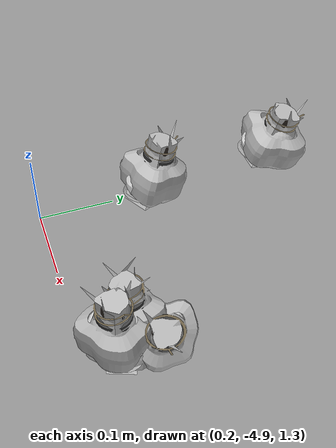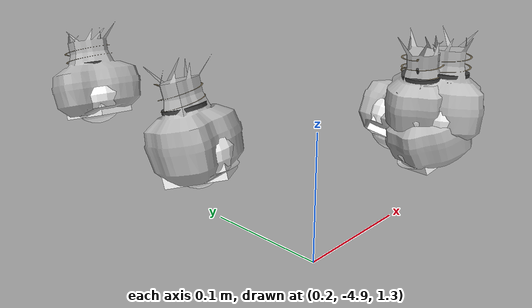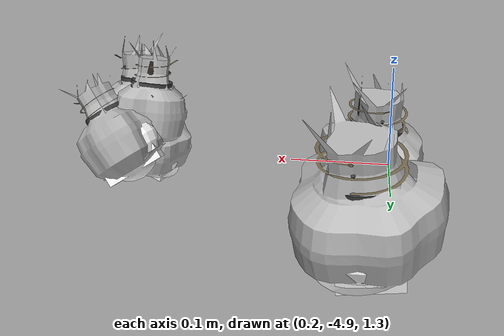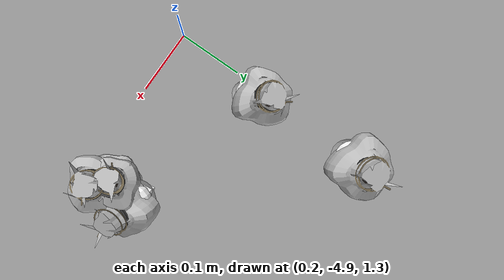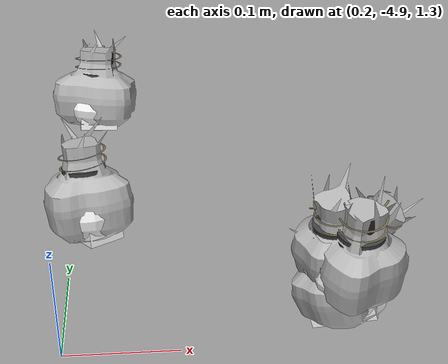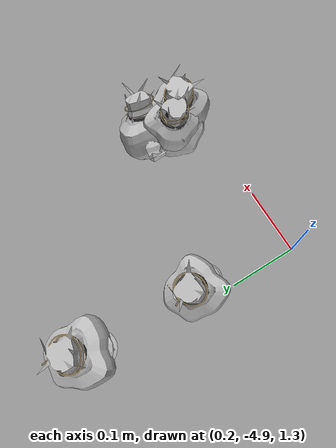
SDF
<sdf version="1.11">
 <world name="peach_orchard">
  <model name="ground">
   <static>true</static>
   <link name="link">
    <visual name="soil">
     <geometry><plane><normal>0 0 1</normal><size>32 22</size></plane></geometry>
     <material>
      <ambient>1 1 1 1</ambient>
      <diffuse>1 1 1 1</diffuse>
      <specular>0.1 0.1 0.1 1</specular>
      <pbr>
       <metal>
        <albedo_map>textures/soil_albedo.png</albedo_map>
        <normal_map type="tangent">textures/soil_normal.png</normal_map>
        <roughness>0.95</roughness>
        <metalness>0</metalness>
       </metal>
      </pbr>
     </material>
    </visual>
    <collision name="c_soil">
     <geometry><plane><normal>0 0 1</normal><size>32 22</size></plane></geometry>
    </collision>
   </link>
  </model>
  <model name="peach_tree_r2_t1_04">
   <pose>0.436662 -4.80912 1.30517 0 0.587862 -0.159604</pose>
   <static>true</static>
   <link name="bag">
    <visual name="bag_mesh">
     <pose>0 0 0.0455495 0 0 -0</pose>
     <geometry>
      <mesh><uri>model://peach_sim/meshes/bagged_peach.glb</uri><scale>0.971305 1.16217 1.03522</scale></mesh>
     </geometry>
    </visual>
    <visual name="body">
     <pose>0 0 0.0275495 0 0 0</pose>
     <geometry><ellipsoid><radii>0.0364239 0.0302163 0.0297535</radii></ellipsoid></geometry>
     <material>
      <ambient>1 1 1 1</ambient>
      <diffuse>1 1 1 1</diffuse>
      <specular>0.1 0.1 0.1 1</specular>
      <pbr>
       <metal>
        <albedo_map>textures/paper_bag_albedo.png</albedo_map>
        <normal_map type="tangent">textures/paper_bag_normal.png</normal_map>
        <roughness>0.72</roughness>
        <metalness>0</metalness>
       </metal>
      </pbr>
     </material>
    </visual>
    <visual name="bottom_fold">
     <pose>0 0 0.012 0 0 0.35</pose>
     <geometry><box><size>0.0564571 0.0347487 0.022</size></box></geometry>
     <material>
      <ambient>1 1 1 1</ambient>
      <diffuse>1 1 1 1</diffuse>
      <specular>0.1 0.1 0.1 1</specular>
      <pbr>
       <metal>
        <albedo_map>textures/paper_bag_albedo.png</albedo_map>
        <normal_map type="tangent">textures/paper_bag_normal.png</normal_map>
        <roughness>0.8</roughness>
        <metalness>0</metalness>
       </metal>
      </pbr>
     </material>
    </visual>
    <visual name="fruit">
     <pose>0 0 0.0204963 0 0 0</pose>
     <geometry><sphere><radius>0.0275561</radius></sphere></geometry>
     <material>
      <ambient>1 1 1 1</ambient>
      <diffuse>1 1 1 1</diffuse>
      <specular>0.1 0.1 0.1 1</specular>
      <pbr>
       <metal>
        <albedo_map>textures/fruit_skin_albedo.png</albedo_map>
        <normal_map type="tangent">textures/fruit_skin_normal.png</normal_map>
        <roughness>0.55</roughness>
        <metalness>0</metalness>
       </metal>
      </pbr>
     </material>
    </visual>
    <visual name="neck">
     <pose>0 0 0.064099 0 0 0</pose>
     <geometry><cylinder><radius>0.013</radius><length>0.018</length></cylinder></geometry>
     <material>
      <ambient>1 1 1 1</ambient>
      <diffuse>1 1 1 1</diffuse>
      <specular>0.1 0.1 0.1 1</specular>
      <pbr>
       <metal>
        <albedo_map>textures/paper_bag_albedo.png</albedo_map>
        <normal_map type="tangent">textures/paper_bag_normal.png</normal_map>
        <roughness>0.75</roughness>
        <metalness>0</metalness>
       </metal>
      </pbr>
     </material>
    </visual>
    <visual name="gather">
     <pose>0 0 0.045099 0 0 0</pose>
     <geometry><cylinder><radius>0.019</radius><length>0.02</length></cylinder></geometry>
     <material>
      <ambient>1 1 1 1</ambient>
      <diffuse>1 1 1 1</diffuse>
      <specular>0.1 0.1 0.1 1</specular>
      <pbr>
       <metal>
        <albedo_map>textures/paper_bag_albedo.png</albedo_map>
        <normal_map type="tangent">textures/paper_bag_normal.png</normal_map>
        <roughness>0.8</roughness>
        <metalness>0</metalness>
       </metal>
      </pbr>
     </material>
    </visual>
    <visual name="inner_paper">
     <pose>0 0 0.069099 0 0 0</pose>
     <geometry><cylinder><radius>0.01</radius><length>0.008</length></cylinder></geometry>
     <material>
      <ambient>0.180392 0.14902 0.133333 1</ambient>
      <diffuse>0.180392 0.14902 0.133333 1</diffuse>
      <specular>0.1 0.1 0.1 1</specular>
     </material>
    </visual>
    <visual name="wire_0">
     <pose>0 0 0.059099 0 0 0</pose>
     <geometry><cylinder><radius>0.0205</radius><length>0.0035</length></cylinder></geometry>
     <material>
      <ambient>0.25 0.25 0.25 1</ambient>
      <diffuse>0.25 0.25 0.25 1</diffuse>
      <specular>0.1 0.1 0.1 1</specular>
     </material>
    </visual>
    <visual name="wire_1">
     <pose>0 0 0.066099 0 0 0</pose>
     <geometry><cylinder><radius>0.0205</radius><length>0.0035</length></cylinder></geometry>
     <material>
      <ambient>0.25 0.25 0.25 1</ambient>
      <diffuse>0.25 0.25 0.25 1</diffuse>
      <specular>0.1 0.1 0.1 1</specular>
     </material>
    </visual>
    <visual name="wire_tail">
     <pose>0.01 0 0.067099 0 0.521618 0</pose>
     <geometry><cylinder><radius>0.0012</radius><length>0.026</length></cylinder></geometry>
     <material>
      <ambient>0.25 0.25 0.25 1</ambient>
      <diffuse>0.25 0.25 0.25 1</diffuse>
      <specular>0.1 0.1 0.1 1</specular>
     </material>
    </visual>
    <collision name="c_body">
     <pose>0 0 0.0275495 0 0 0</pose>
     <geometry><cylinder><radius>0.0364239</radius><length>0.055099</length></cylinder></geometry>
    </collision>
   </link>
  </model>
  <model name="peach_tree_r2_t1_05">
   <pose>0.441957 -4.84376 1.32323 0 0.123582 -2.92583</pose>
   <static>true</static>
   <link name="bag">
    <visual name="bag_mesh">
     <pose>0 0 0.044449 0 0 -0</pose>
     <geometry>
      <mesh><uri>model://peach_sim/meshes/bagged_peach.glb</uri><scale>0.914347 1.11201 1.0102</scale></mesh>
     </geometry>
    </visual>
    <visual name="body">
     <pose>0 0 0.026449 0 0 0</pose>
     <geometry><ellipsoid><radii>0.034288 0.0289122 0.0285649</radii></ellipsoid></geometry>
     <material>
      <ambient>1 1 1 1</ambient>
      <diffuse>1 1 1 1</diffuse>
      <specular>0.1 0.1 0.1 1</specular>
      <pbr>
       <metal>
        <albedo_map>textures/paper_bag_albedo.png</albedo_map>
        <normal_map type="tangent">textures/paper_bag_normal.png</normal_map>
        <roughness>0.72</roughness>
        <metalness>0</metalness>
       </metal>
      </pbr>
     </material>
    </visual>
    <visual name="bottom_fold">
     <pose>0 0 0.012 0 0 0.35</pose>
     <geometry><box><size>0.0531464 0.033249 0.022</size></box></geometry>
     <material>
      <ambient>1 1 1 1</ambient>
      <diffuse>1 1 1 1</diffuse>
      <specular>0.1 0.1 0.1 1</specular>
      <pbr>
       <metal>
        <albedo_map>textures/paper_bag_albedo.png</albedo_map>
        <normal_map type="tangent">textures/paper_bag_normal.png</normal_map>
        <roughness>0.8</roughness>
        <metalness>0</metalness>
       </metal>
      </pbr>
     </material>
    </visual>
    <visual name="fruit">
     <pose>0 0 0.0181017 0 0 0</pose>
     <geometry><sphere><radius>0.0250657</radius></sphere></geometry>
     <material>
      <ambient>1 1 1 1</ambient>
      <diffuse>1 1 1 1</diffuse>
      <specular>0.1 0.1 0.1 1</specular>
      <pbr>
       <metal>
        <albedo_map>textures/fruit_skin_albedo.png</albedo_map>
        <normal_map type="tangent">textures/fruit_skin_normal.png</normal_map>
        <roughness>0.55</roughness>
        <metalness>0</metalness>
       </metal>
      </pbr>
     </material>
    </visual>
    <visual name="neck">
     <pose>0 0 0.0618979 0 0 0</pose>
     <geometry><cylinder><radius>0.013</radius><length>0.018</length></cylinder></geometry>
     <material>
      <ambient>1 1 1 1</ambient>
      <diffuse>1 1 1 1</diffuse>
      <specular>0.1 0.1 0.1 1</specular>
      <pbr>
       <metal>
        <albedo_map>textures/paper_bag_albedo.png</albedo_map>
        <normal_map type="tangent">textures/paper_bag_normal.png</normal_map>
        <roughness>0.75</roughness>
        <metalness>0</metalness>
       </metal>
      </pbr>
     </material>
    </visual>
    <visual name="gather">
     <pose>0 0 0.0428979 0 0 0</pose>
     <geometry><cylinder><radius>0.019</radius><length>0.02</length></cylinder></geometry>
     <material>
      <ambient>1 1 1 1</ambient>
      <diffuse>1 1 1 1</diffuse>
      <specular>0.1 0.1 0.1 1</specular>
      <pbr>
       <metal>
        <albedo_map>textures/paper_bag_albedo.png</albedo_map>
        <normal_map type="tangent">textures/paper_bag_normal.png</normal_map>
        <roughness>0.8</roughness>
        <metalness>0</metalness>
       </metal>
      </pbr>
     </material>
    </visual>
    <visual name="inner_paper">
     <pose>0 0 0.0668979 0 0 0</pose>
     <geometry><cylinder><radius>0.01</radius><length>0.008</length></cylinder></geometry>
     <material>
      <ambient>0.180392 0.14902 0.133333 1</ambient>
      <diffuse>0.180392 0.14902 0.133333 1</diffuse>
      <specular>0.1 0.1 0.1 1</specular>
     </material>
    </visual>
    <visual name="wire_0">
     <pose>0 0 0.0568979 0 0 0</pose>
     <geometry><cylinder><radius>0.0205</radius><length>0.0035</length></cylinder></geometry>
     <material>
      <ambient>0.25 0.25 0.25 1</ambient>
      <diffuse>0.25 0.25 0.25 1</diffuse>
      <specular>0.1 0.1 0.1 1</specular>
     </material>
    </visual>
    <visual name="wire_1">
     <pose>0 0 0.0638979 0 0 0</pose>
     <geometry><cylinder><radius>0.0205</radius><length>0.0035</length></cylinder></geometry>
     <material>
      <ambient>0.25 0.25 0.25 1</ambient>
      <diffuse>0.25 0.25 0.25 1</diffuse>
      <specular>0.1 0.1 0.1 1</specular>
     </material>
    </visual>
    <visual name="wire_tail">
     <pose>0.01 0 0.0648979 0 0.521618 0</pose>
     <geometry><cylinder><radius>0.0012</radius><length>0.026</length></cylinder></geometry>
     <material>
      <ambient>0.25 0.25 0.25 1</ambient>
      <diffuse>0.25 0.25 0.25 1</diffuse>
      <specular>0.1 0.1 0.1 1</specular>
     </material>
    </visual>
    <collision name="c_body">
     <pose>0 0 0.026449 0 0 0</pose>
     <geometry><cylinder><radius>0.034288</radius><length>0.0528979</length></cylinder></geometry>
    </collision>
   </link>
  </model>
  <model name="peach_tree_r2_t1_06">
   <pose>0.447511 -4.86032 1.29674 0 0.347227 2.52687</pose>
   <static>true</static>
   <link name="bag">
    <visual name="bag_mesh">
     <pose>0 0 0.0392523 0 0 0</pose>
     <geometry>
      <mesh><uri>model://peach_sim/meshes/bagged_peach.glb</uri><scale>0.994447 1.1534 0.892099</scale></mesh>
     </geometry>
    </visual>
    <visual name="body">
     <pose>0 0 0.0212523 0 0 0</pose>
     <geometry><ellipsoid><radii>0.0372918 0.0299883 0.0229525</radii></ellipsoid></geometry>
     <material>
      <ambient>1 1 1 1</ambient>
      <diffuse>1 1 1 1</diffuse>
      <specular>0.1 0.1 0.1 1</specular>
      <pbr>
       <metal>
        <albedo_map>textures/paper_bag_albedo.png</albedo_map>
        <normal_map type="tangent">textures/paper_bag_normal.png</normal_map>
        <roughness>0.72</roughness>
        <metalness>0</metalness>
       </metal>
      </pbr>
     </material>
    </visual>
    <visual name="bottom_fold">
     <pose>0 0 0.012 0 0 0.35</pose>
     <geometry><box><size>0.0578022 0.0344866 0.022</size></box></geometry>
     <material>
      <ambient>1 1 1 1</ambient>
      <diffuse>1 1 1 1</diffuse>
      <specular>0.1 0.1 0.1 1</specular>
      <pbr>
       <metal>
        <albedo_map>textures/paper_bag_albedo.png</albedo_map>
        <normal_map type="tangent">textures/paper_bag_normal.png</normal_map>
        <roughness>0.8</roughness>
        <metalness>0</metalness>
       </metal>
      </pbr>
     </material>
    </visual>
    <visual name="fruit">
     <pose>0 0 0.020677 0 0 0</pose>
     <geometry><sphere><radius>0.0277441</radius></sphere></geometry>
     <material>
      <ambient>1 1 1 1</ambient>
      <diffuse>1 1 1 1</diffuse>
      <specular>0.1 0.1 0.1 1</specular>
      <pbr>
       <metal>
        <albedo_map>textures/fruit_skin_albedo.png</albedo_map>
        <normal_map type="tangent">textures/fruit_skin_normal.png</normal_map>
        <roughness>0.55</roughness>
        <metalness>0</metalness>
       </metal>
      </pbr>
     </material>
    </visual>
    <visual name="neck">
     <pose>0 0 0.0515047 0 0 0</pose>
     <geometry><cylinder><radius>0.013</radius><length>0.018</length></cylinder></geometry>
     <material>
      <ambient>1 1 1 1</ambient>
      <diffuse>1 1 1 1</diffuse>
      <specular>0.1 0.1 0.1 1</specular>
      <pbr>
       <metal>
        <albedo_map>textures/paper_bag_albedo.png</albedo_map>
        <normal_map type="tangent">textures/paper_bag_normal.png</normal_map>
        <roughness>0.75</roughness>
        <metalness>0</metalness>
       </metal>
      </pbr>
     </material>
    </visual>
    <visual name="gather">
     <pose>0 0 0.0325047 0 0 0</pose>
     <geometry><cylinder><radius>0.019</radius><length>0.02</length></cylinder></geometry>
     <material>
      <ambient>1 1 1 1</ambient>
      <diffuse>1 1 1 1</diffuse>
      <specular>0.1 0.1 0.1 1</specular>
      <pbr>
       <metal>
        <albedo_map>textures/paper_bag_albedo.png</albedo_map>
        <normal_map type="tangent">textures/paper_bag_normal.png</normal_map>
        <roughness>0.8</roughness>
        <metalness>0</metalness>
       </metal>
      </pbr>
     </material>
    </visual>
    <visual name="inner_paper">
     <pose>0 0 0.0565047 0 0 0</pose>
     <geometry><cylinder><radius>0.01</radius><length>0.008</length></cylinder></geometry>
     <material>
      <ambient>0.180392 0.14902 0.133333 1</ambient>
      <diffuse>0.180392 0.14902 0.133333 1</diffuse>
      <specular>0.1 0.1 0.1 1</specular>
     </material>
    </visual>
    <visual name="wire_0">
     <pose>0 0 0.0465047 0 0 0</pose>
     <geometry><cylinder><radius>0.0205</radius><length>0.0035</length></cylinder></geometry>
     <material>
      <ambient>0.25 0.25 0.25 1</ambient>
      <diffuse>0.25 0.25 0.25 1</diffuse>
      <specular>0.1 0.1 0.1 1</specular>
     </material>
    </visual>
    <visual name="wire_1">
     <pose>0 0 0.0535047 0 0 0</pose>
     <geometry><cylinder><radius>0.0205</radius><length>0.0035</length></cylinder></geometry>
     <material>
      <ambient>0.25 0.25 0.25 1</ambient>
      <diffuse>0.25 0.25 0.25 1</diffuse>
      <specular>0.1 0.1 0.1 1</specular>
     </material>
    </visual>
    <visual name="wire_tail">
     <pose>0.01 0 0.0545047 0 0.521618 0</pose>
     <geometry><cylinder><radius>0.0012</radius><length>0.026</length></cylinder></geometry>
     <material>
      <ambient>0.25 0.25 0.25 1</ambient>
      <diffuse>0.25 0.25 0.25 1</diffuse>
      <specular>0.1 0.1 0.1 1</specular>
     </material>
    </visual>
    <collision name="c_body">
     <pose>0 0 0.0212523 0 0 0</pose>
     <geometry><cylinder><radius>0.0372918</radius><length>0.0425047</length></cylinder></geometry>
    </collision>
   </link>
  </model>
  <model name="peach_tree_r2_t1_07">
   <pose>0.449602 -4.86527 1.3195 0 0.0382728 0.388634</pose>
   <static>true</static>
   <link name="bag">
    <visual name="bag_mesh">
     <pose>0 0 0.0470656 0 0 0</pose>
     <geometry>
      <mesh><uri>model://peach_sim/meshes/bagged_peach.glb</uri><scale>1.01619 1.12014 1.06967</scale></mesh>
     </geometry>
    </visual>
    <visual name="body">
     <pose>0 0 0.0290656 0 0 0</pose>
     <geometry><ellipsoid><radii>0.0381072 0.0291236 0.0313908</radii></ellipsoid></geometry>
     <material>
      <ambient>1 1 1 1</ambient>
      <diffuse>1 1 1 1</diffuse>
      <specular>0.1 0.1 0.1 1</specular>
      <pbr>
       <metal>
        <albedo_map>textures/paper_bag_albedo.png</albedo_map>
        <normal_map type="tangent">textures/paper_bag_normal.png</normal_map>
        <roughness>0.72</roughness>
        <metalness>0</metalness>
       </metal>
      </pbr>
     </material>
    </visual>
    <visual name="bottom_fold">
     <pose>0 0 0.012 0 0 0.35</pose>
     <geometry><box><size>0.0590661 0.0334922 0.022</size></box></geometry>
     <material>
      <ambient>1 1 1 1</ambient>
      <diffuse>1 1 1 1</diffuse>
      <specular>0.1 0.1 0.1 1</specular>
      <pbr>
       <metal>
        <albedo_map>textures/paper_bag_albedo.png</albedo_map>
        <normal_map type="tangent">textures/paper_bag_normal.png</normal_map>
        <roughness>0.8</roughness>
        <metalness>0</metalness>
       </metal>
      </pbr>
     </material>
    </visual>
    <visual name="fruit">
     <pose>0 0 0.0181959 0 0 0</pose>
     <geometry><sphere><radius>0.0251638</radius></sphere></geometry>
     <material>
      <ambient>1 1 1 1</ambient>
      <diffuse>1 1 1 1</diffuse>
      <specular>0.1 0.1 0.1 1</specular>
      <pbr>
       <metal>
        <albedo_map>textures/fruit_skin_albedo.png</albedo_map>
        <normal_map type="tangent">textures/fruit_skin_normal.png</normal_map>
        <roughness>0.55</roughness>
        <metalness>0</metalness>
       </metal>
      </pbr>
     </material>
    </visual>
    <visual name="neck">
     <pose>0 0 0.0671312 0 0 0</pose>
     <geometry><cylinder><radius>0.013</radius><length>0.018</length></cylinder></geometry>
     <material>
      <ambient>1 1 1 1</ambient>
      <diffuse>1 1 1 1</diffuse>
      <specular>0.1 0.1 0.1 1</specular>
      <pbr>
       <metal>
        <albedo_map>textures/paper_bag_albedo.png</albedo_map>
        <normal_map type="tangent">textures/paper_bag_normal.png</normal_map>
        <roughness>0.75</roughness>
        <metalness>0</metalness>
       </metal>
      </pbr>
     </material>
    </visual>
    <visual name="gather">
     <pose>0 0 0.0481312 0 0 0</pose>
     <geometry><cylinder><radius>0.019</radius><length>0.02</length></cylinder></geometry>
     <material>
      <ambient>1 1 1 1</ambient>
      <diffuse>1 1 1 1</diffuse>
      <specular>0.1 0.1 0.1 1</specular>
      <pbr>
       <metal>
        <albedo_map>textures/paper_bag_albedo.png</albedo_map>
        <normal_map type="tangent">textures/paper_bag_normal.png</normal_map>
        <roughness>0.8</roughness>
        <metalness>0</metalness>
       </metal>
      </pbr>
     </material>
    </visual>
    <visual name="inner_paper">
     <pose>0 0 0.0721312 0 0 0</pose>
     <geometry><cylinder><radius>0.01</radius><length>0.008</length></cylinder></geometry>
     <material>
      <ambient>0.180392 0.14902 0.133333 1</ambient>
      <diffuse>0.180392 0.14902 0.133333 1</diffuse>
      <specular>0.1 0.1 0.1 1</specular>
     </material>
    </visual>
    <visual name="wire_0">
     <pose>0 0 0.0621312 0 0 0</pose>
     <geometry><cylinder><radius>0.0205</radius><length>0.0035</length></cylinder></geometry>
     <material>
      <ambient>0.25 0.25 0.25 1</ambient>
      <diffuse>0.25 0.25 0.25 1</diffuse>
      <specular>0.1 0.1 0.1 1</specular>
     </material>
    </visual>
    <visual name="wire_1">
     <pose>0 0 0.0691312 0 0 0</pose>
     <geometry><cylinder><radius>0.0205</radius><length>0.0035</length></cylinder></geometry>
     <material>
      <ambient>0.25 0.25 0.25 1</ambient>
      <diffuse>0.25 0.25 0.25 1</diffuse>
      <specular>0.1 0.1 0.1 1</specular>
     </material>
    </visual>
    <visual name="wire_tail">
     <pose>0.01 0 0.0701312 0 0.521618 0</pose>
     <geometry><cylinder><radius>0.0012</radius><length>0.026</length></cylinder></geometry>
     <material>
      <ambient>0.25 0.25 0.25 1</ambient>
      <diffuse>0.25 0.25 0.25 1</diffuse>
      <specular>0.1 0.1 0.1 1</specular>
     </material>
    </visual>
    <collision name="c_body">
     <pose>0 0 0.0290656 0 0 0</pose>
     <geometry><cylinder><radius>0.0381072</radius><length>0.0581312</length></cylinder></geometry>
    </collision>
   </link>
  </model>
  <model name="peach_tree_r2_t1_10">
   <pose>0.22 -4.58666 1.33521 0 0.303935 1.32749</pose>
   <static>true</static>
   <link name="bag">
    <visual name="bag_mesh">
     <pose>0 0 0.0401872 0 0 0</pose>
     <geometry>
      <mesh><uri>model://peach_sim/meshes/bagged_peach.glb</uri><scale>1.07845 1.26526 0.913346</scale></mesh>
     </geometry>
    </visual>
    <visual name="body">
     <pose>0 0 0.0221872 0 0 0</pose>
     <geometry><ellipsoid><radii>0.0404418 0.0328967 0.0239622</radii></ellipsoid></geometry>
     <material>
      <ambient>1 1 1 1</ambient>
      <diffuse>1 1 1 1</diffuse>
      <specular>0.1 0.1 0.1 1</specular>
      <pbr>
       <metal>
        <albedo_map>textures/paper_bag_albedo.png</albedo_map>
        <normal_map type="tangent">textures/paper_bag_normal.png</normal_map>
        <roughness>0.72</roughness>
        <metalness>0</metalness>
       </metal>
      </pbr>
     </material>
    </visual>
    <visual name="bottom_fold">
     <pose>0 0 0.012 0 0 0.35</pose>
     <geometry><box><size>0.0626847 0.0378312 0.022</size></box></geometry>
     <material>
      <ambient>1 1 1 1</ambient>
      <diffuse>1 1 1 1</diffuse>
      <specular>0.1 0.1 0.1 1</specular>
      <pbr>
       <metal>
        <albedo_map>textures/paper_bag_albedo.png</albedo_map>
        <normal_map type="tangent">textures/paper_bag_normal.png</normal_map>
        <roughness>0.8</roughness>
        <metalness>0</metalness>
       </metal>
      </pbr>
     </material>
    </visual>
    <visual name="fruit">
     <pose>0 0 0.0200574 0 0 0</pose>
     <geometry><sphere><radius>0.0270997</radius></sphere></geometry>
     <material>
      <ambient>1 1 1 1</ambient>
      <diffuse>1 1 1 1</diffuse>
      <specular>0.1 0.1 0.1 1</specular>
      <pbr>
       <metal>
        <albedo_map>textures/fruit_skin_albedo.png</albedo_map>
        <normal_map type="tangent">textures/fruit_skin_normal.png</normal_map>
        <roughness>0.55</roughness>
        <metalness>0</metalness>
       </metal>
      </pbr>
     </material>
    </visual>
    <visual name="neck">
     <pose>0 0 0.0533744 0 0 0</pose>
     <geometry><cylinder><radius>0.013</radius><length>0.018</length></cylinder></geometry>
     <material>
      <ambient>1 1 1 1</ambient>
      <diffuse>1 1 1 1</diffuse>
      <specular>0.1 0.1 0.1 1</specular>
      <pbr>
       <metal>
        <albedo_map>textures/paper_bag_albedo.png</albedo_map>
        <normal_map type="tangent">textures/paper_bag_normal.png</normal_map>
        <roughness>0.75</roughness>
        <metalness>0</metalness>
       </metal>
      </pbr>
     </material>
    </visual>
    <visual name="gather">
     <pose>0 0 0.0343744 0 0 0</pose>
     <geometry><cylinder><radius>0.019</radius><length>0.02</length></cylinder></geometry>
     <material>
      <ambient>1 1 1 1</ambient>
      <diffuse>1 1 1 1</diffuse>
      <specular>0.1 0.1 0.1 1</specular>
      <pbr>
       <metal>
        <albedo_map>textures/paper_bag_albedo.png</albedo_map>
        <normal_map type="tangent">textures/paper_bag_normal.png</normal_map>
        <roughness>0.8</roughness>
        <metalness>0</metalness>
       </metal>
      </pbr>
     </material>
    </visual>
    <visual name="inner_paper">
     <pose>0 0 0.0583744 0 0 0</pose>
     <geometry><cylinder><radius>0.01</radius><length>0.008</length></cylinder></geometry>
     <material>
      <ambient>0.180392 0.14902 0.133333 1</ambient>
      <diffuse>0.180392 0.14902 0.133333 1</diffuse>
      <specular>0.1 0.1 0.1 1</specular>
     </material>
    </visual>
    <visual name="wire_0">
     <pose>0 0 0.0483744 0 0 0</pose>
     <geometry><cylinder><radius>0.0205</radius><length>0.0035</length></cylinder></geometry>
     <material>
      <ambient>0.25 0.25 0.25 1</ambient>
      <diffuse>0.25 0.25 0.25 1</diffuse>
      <specular>0.1 0.1 0.1 1</specular>
     </material>
    </visual>
    <visual name="wire_1">
     <pose>0 0 0.0553744 0 0 0</pose>
     <geometry><cylinder><radius>0.0205</radius><length>0.0035</length></cylinder></geometry>
     <material>
      <ambient>0.25 0.25 0.25 1</ambient>
      <diffuse>0.25 0.25 0.25 1</diffuse>
      <specular>0.1 0.1 0.1 1</specular>
     </material>
    </visual>
    <visual name="wire_tail">
     <pose>0.01 0 0.0563744 0 0.521618 0</pose>
     <geometry><cylinder><radius>0.0012</radius><length>0.026</length></cylinder></geometry>
     <material>
      <ambient>0.25 0.25 0.25 1</ambient>
      <diffuse>0.25 0.25 0.25 1</diffuse>
      <specular>0.1 0.1 0.1 1</specular>
     </material>
    </visual>
    <collision name="c_body">
     <pose>0 0 0.0221872 0 0 0</pose>
     <geometry><cylinder><radius>0.0404418</radius><length>0.0443744</length></cylinder></geometry>
    </collision>
   </link>
  </model>
  <model name="peach_tree_r2_t1_11">
   <pose>0.22 -4.75347 1.31327 0 0.254386 1.79919</pose>
   <static>true</static>
   <link name="bag">
    <visual name="bag_mesh">
     <pose>0 0 0.0462374 0 0 0</pose>
     <geometry>
      <mesh><uri>model://peach_sim/meshes/bagged_peach.glb</uri><scale>1.02661 1.16115 1.05085</scale></mesh>
     </geometry>
    </visual>
    <visual name="body">
     <pose>0 0 0.0282374 0 0 0</pose>
     <geometry><ellipsoid><radii>0.0384979 0.0301898 0.0304964</radii></ellipsoid></geometry>
     <material>
      <ambient>1 1 1 1</ambient>
      <diffuse>1 1 1 1</diffuse>
      <specular>0.1 0.1 0.1 1</specular>
      <pbr>
       <metal>
        <albedo_map>textures/paper_bag_albedo.png</albedo_map>
        <normal_map type="tangent">textures/paper_bag_normal.png</normal_map>
        <roughness>0.72</roughness>
        <metalness>0</metalness>
       </metal>
      </pbr>
     </material>
    </visual>
    <visual name="bottom_fold">
     <pose>0 0 0.012 0 0 0.35</pose>
     <geometry><box><size>0.0596718 0.0347183 0.022</size></box></geometry>
     <material>
      <ambient>1 1 1 1</ambient>
      <diffuse>1 1 1 1</diffuse>
      <specular>0.1 0.1 0.1 1</specular>
      <pbr>
       <metal>
        <albedo_map>textures/paper_bag_albedo.png</albedo_map>
        <normal_map type="tangent">textures/paper_bag_normal.png</normal_map>
        <roughness>0.8</roughness>
        <metalness>0</metalness>
       </metal>
      </pbr>
     </material>
    </visual>
    <visual name="fruit">
     <pose>0 0 0.017068 0 0 0</pose>
     <geometry><sphere><radius>0.0239908</radius></sphere></geometry>
     <material>
      <ambient>1 1 1 1</ambient>
      <diffuse>1 1 1 1</diffuse>
      <specular>0.1 0.1 0.1 1</specular>
      <pbr>
       <metal>
        <albedo_map>textures/fruit_skin_albedo.png</albedo_map>
        <normal_map type="tangent">textures/fruit_skin_normal.png</normal_map>
        <roughness>0.55</roughness>
        <metalness>0</metalness>
       </metal>
      </pbr>
     </material>
    </visual>
    <visual name="neck">
     <pose>0 0 0.0654748 0 0 0</pose>
     <geometry><cylinder><radius>0.013</radius><length>0.018</length></cylinder></geometry>
     <material>
      <ambient>1 1 1 1</ambient>
      <diffuse>1 1 1 1</diffuse>
      <specular>0.1 0.1 0.1 1</specular>
      <pbr>
       <metal>
        <albedo_map>textures/paper_bag_albedo.png</albedo_map>
        <normal_map type="tangent">textures/paper_bag_normal.png</normal_map>
        <roughness>0.75</roughness>
        <metalness>0</metalness>
       </metal>
      </pbr>
     </material>
    </visual>
    <visual name="gather">
     <pose>0 0 0.0464748 0 0 0</pose>
     <geometry><cylinder><radius>0.019</radius><length>0.02</length></cylinder></geometry>
     <material>
      <ambient>1 1 1 1</ambient>
      <diffuse>1 1 1 1</diffuse>
      <specular>0.1 0.1 0.1 1</specular>
      <pbr>
       <metal>
        <albedo_map>textures/paper_bag_albedo.png</albedo_map>
        <normal_map type="tangent">textures/paper_bag_normal.png</normal_map>
        <roughness>0.8</roughness>
        <metalness>0</metalness>
       </metal>
      </pbr>
     </material>
    </visual>
    <visual name="inner_paper">
     <pose>0 0 0.0704748 0 0 0</pose>
     <geometry><cylinder><radius>0.01</radius><length>0.008</length></cylinder></geometry>
     <material>
      <ambient>0.180392 0.14902 0.133333 1</ambient>
      <diffuse>0.180392 0.14902 0.133333 1</diffuse>
      <specular>0.1 0.1 0.1 1</specular>
     </material>
    </visual>
    <visual name="wire_0">
     <pose>0 0 0.0604748 0 0 0</pose>
     <geometry><cylinder><radius>0.0205</radius><length>0.0035</length></cylinder></geometry>
     <material>
      <ambient>0.25 0.25 0.25 1</ambient>
      <diffuse>0.25 0.25 0.25 1</diffuse>
      <specular>0.1 0.1 0.1 1</specular>
     </material>
    </visual>
    <visual name="wire_1">
     <pose>0 0 0.0674748 0 0 0</pose>
     <geometry><cylinder><radius>0.0205</radius><length>0.0035</length></cylinder></geometry>
     <material>
      <ambient>0.25 0.25 0.25 1</ambient>
      <diffuse>0.25 0.25 0.25 1</diffuse>
      <specular>0.1 0.1 0.1 1</specular>
     </material>
    </visual>
    <visual name="wire_tail">
     <pose>0.01 0 0.0684748 0 0.521618 0</pose>
     <geometry><cylinder><radius>0.0012</radius><length>0.026</length></cylinder></geometry>
     <material>
      <ambient>0.25 0.25 0.25 1</ambient>
      <diffuse>0.25 0.25 0.25 1</diffuse>
      <specular>0.1 0.1 0.1 1</specular>
     </material>
    </visual>
    <collision name="c_body">
     <pose>0 0 0.0282374 0 0 0</pose>
     <geometry><cylinder><radius>0.0384979</radius><length>0.0564748</length></cylinder></geometry>
    </collision>
   </link>
  </model>
 </world>
</sdf>
